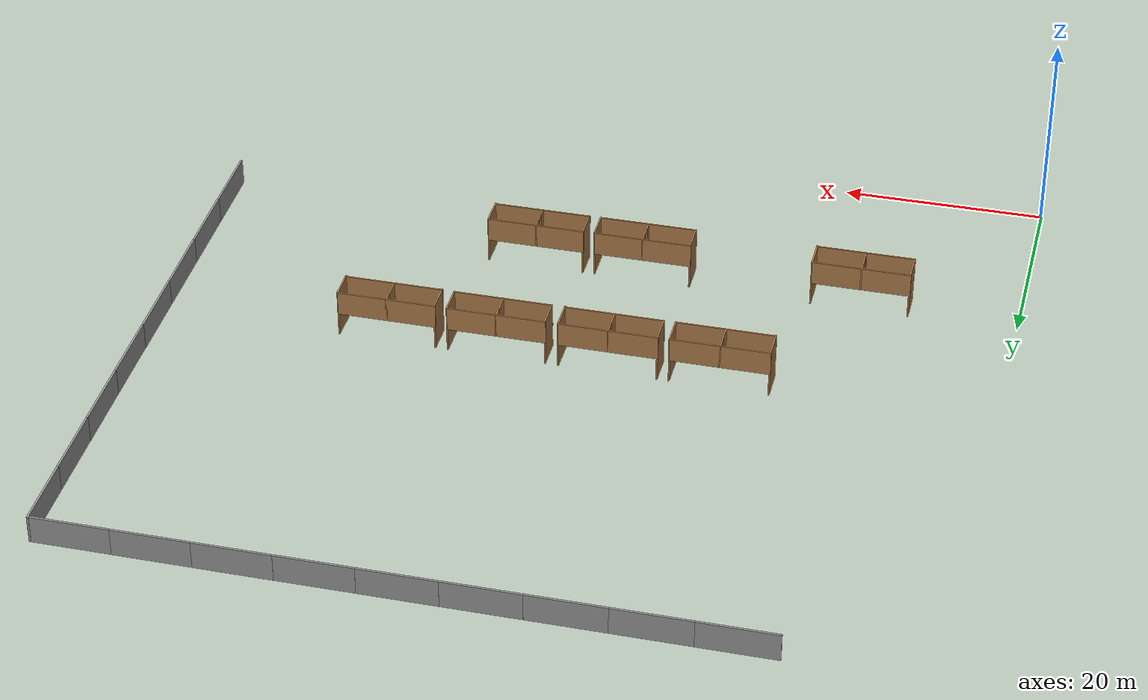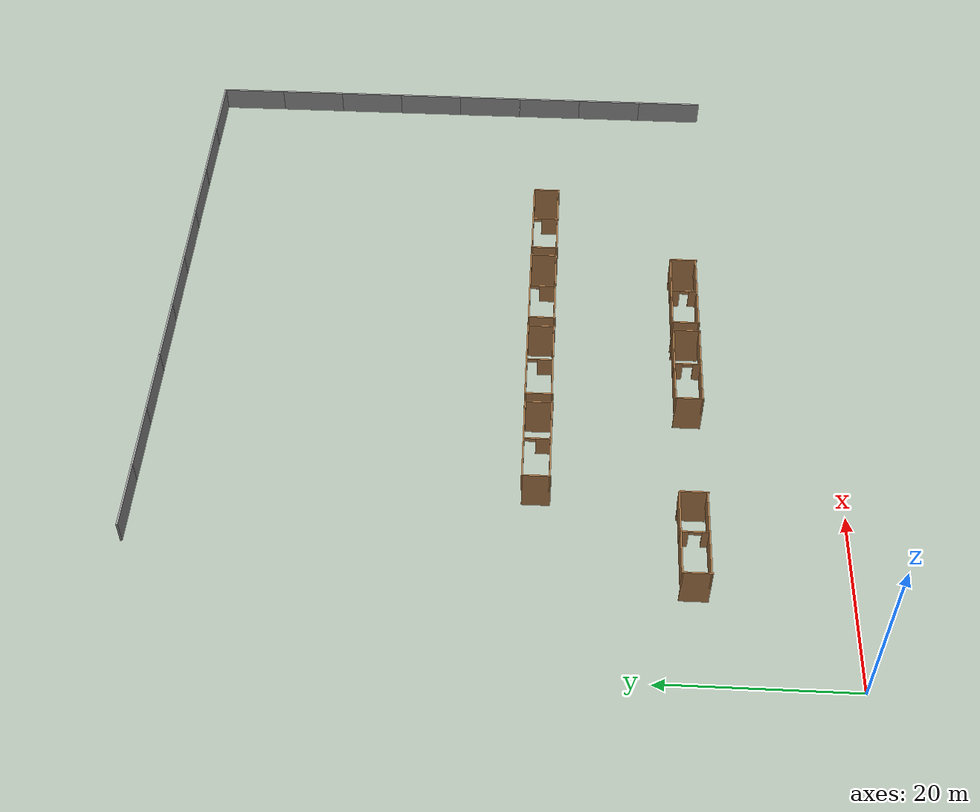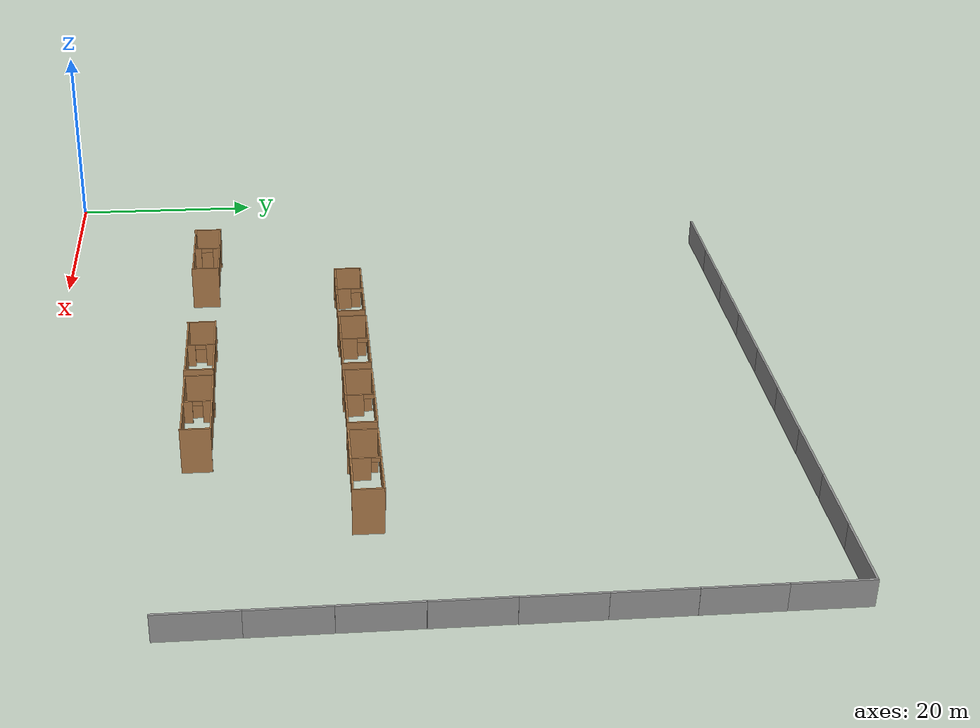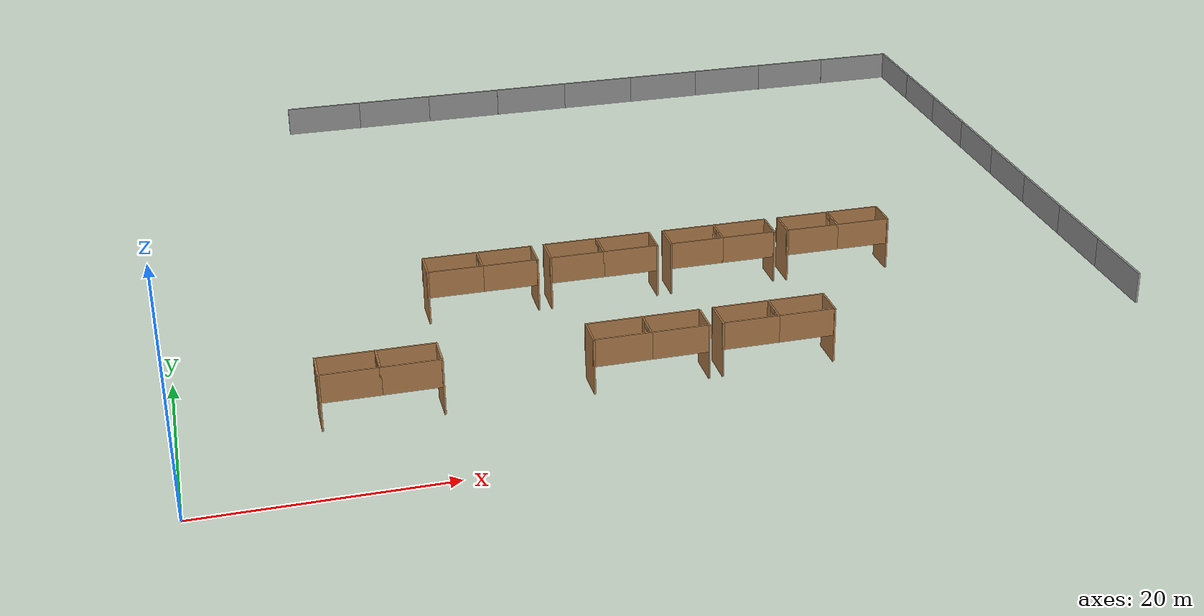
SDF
<sdf version="1.6">
 <world name="default">
  <model name="grey_wall_clone_10_clone_0_clone_clone">
   <static>1</static>
   <link name="link">
    <pose>0 0 1.4 0 -0 0</pose>
    <collision name="collision"><geometry><box><size>7.5 0.2 2.8</size></box></geometry></collision>
    <visual name="visual">
     <cast_shadows>0</cast_shadows>
     <geometry><box><size>7.5 0.2 2.8</size></box></geometry>
     <material>
      <script>
       <uri>model://forest/grey_wall/materials/scripts</uri>
       <uri>model://forest/grey_wall/materials/textures</uri>
       <name>vrc/grey_wall</name>
      </script>
     </material>
    </visual>
   </link>
   <pose>81.244 16.4592 0 0 0 -1.56932</pose>
  </model>
  <model name="grey_wall_clone_10_clone_0_clone_12">
   <static>1</static>
   <link name="link">
    <pose>0 0 1.4 0 -0 0</pose>
    <collision name="collision"><geometry><box><size>7.5 0.2 2.8</size></box></geometry></collision>
    <visual name="visual">
     <cast_shadows>0</cast_shadows>
     <geometry><box><size>7.5 0.2 2.8</size></box></geometry>
     <material>
      <script>
       <uri>model://forest/grey_wall/materials/scripts</uri>
       <uri>model://forest/grey_wall/materials/textures</uri>
       <name>vrc/grey_wall</name>
      </script>
     </material>
    </visual>
   </link>
   <pose>81.241 23.9604 0 0 0 -1.56932</pose>
  </model>
  <model name="grey_wall_clone_10_clone_0_clone_13">
   <static>1</static>
   <link name="link">
    <pose>0 0 1.4 0 -0 0</pose>
    <collision name="collision"><geometry><box><size>7.5 0.2 2.8</size></box></geometry></collision>
    <visual name="visual">
     <cast_shadows>0</cast_shadows>
     <geometry><box><size>7.5 0.2 2.8</size></box></geometry>
     <material>
      <script>
       <uri>model://forest/grey_wall/materials/scripts</uri>
       <uri>model://forest/grey_wall/materials/textures</uri>
       <name>vrc/grey_wall</name>
      </script>
     </material>
    </visual>
   </link>
   <pose>81.233 31.4667 0 0 0 -1.56932</pose>
  </model>
  <model name="grey_wall_clone_10_clone_0_clone_14">
   <static>1</static>
   <link name="link">
    <pose>0 0 1.4 0 -0 0</pose>
    <collision name="collision"><geometry><box><size>7.5 0.2 2.8</size></box></geometry></collision>
    <visual name="visual">
     <cast_shadows>0</cast_shadows>
     <geometry><box><size>7.5 0.2 2.8</size></box></geometry>
     <material>
      <script>
       <uri>model://forest/grey_wall/materials/scripts</uri>
       <uri>model://forest/grey_wall/materials/textures</uri>
       <name>vrc/grey_wall</name>
      </script>
     </material>
    </visual>
   </link>
   <pose>81.2299 38.978 0 0 0 -1.56932</pose>
  </model>
  <model name="grey_wall_clone_10_clone_0_clone_15">
   <static>1</static>
   <link name="link">
    <pose>0 0 1.4 0 -0 0</pose>
    <collision name="collision"><geometry><box><size>7.5 0.2 2.8</size></box></geometry></collision>
    <visual name="visual">
     <cast_shadows>0</cast_shadows>
     <geometry><box><size>7.5 0.2 2.8</size></box></geometry>
     <material>
      <script>
       <uri>model://forest/grey_wall/materials/scripts</uri>
       <uri>model://forest/grey_wall/materials/textures</uri>
       <name>vrc/grey_wall</name>
      </script>
     </material>
    </visual>
   </link>
   <pose>81.2399 46.4861 0 0 0 -1.56932</pose>
  </model>
  <model name="grey_wall_clone_10_clone_0_clone_16">
   <static>1</static>
   <link name="link">
    <pose>0 0 1.4 0 -0 0</pose>
    <collision name="collision"><geometry><box><size>7.5 0.2 2.8</size></box></geometry></collision>
    <visual name="visual">
     <cast_shadows>0</cast_shadows>
     <geometry><box><size>7.5 0.2 2.8</size></box></geometry>
     <material>
      <script>
       <uri>model://forest/grey_wall/materials/scripts</uri>
       <uri>model://forest/grey_wall/materials/textures</uri>
       <name>vrc/grey_wall</name>
      </script>
     </material>
    </visual>
   </link>
   <pose>81.2341 53.9889 0 0 0 -1.56932</pose>
  </model>
  <model name="grey_wall_clone_10_clone_0_clone_17">
   <static>1</static>
   <link name="link">
    <pose>0 0 1.4 0 -0 0</pose>
    <collision name="collision"><geometry><box><size>7.5 0.2 2.8</size></box></geometry></collision>
    <visual name="visual">
     <cast_shadows>0</cast_shadows>
     <geometry><box><size>7.5 0.2 2.8</size></box></geometry>
     <material>
      <script>
       <uri>model://forest/grey_wall/materials/scripts</uri>
       <uri>model://forest/grey_wall/materials/textures</uri>
       <name>vrc/grey_wall</name>
      </script>
     </material>
    </visual>
   </link>
   <pose>81.2319 61.4946 0 0 0 -1.56932</pose>
  </model>
  <model name="grey_wall_clone_10_clone_0_clone_18">
   <static>1</static>
   <link name="link">
    <pose>0 0 1.4 0 -0 0</pose>
    <collision name="collision"><geometry><box><size>7.5 0.2 2.8</size></box></geometry></collision>
    <visual name="visual">
     <cast_shadows>0</cast_shadows>
     <geometry><box><size>7.5 0.2 2.8</size></box></geometry>
     <material>
      <script>
       <uri>model://forest/grey_wall/materials/scripts</uri>
       <uri>model://forest/grey_wall/materials/textures</uri>
       <name>vrc/grey_wall</name>
      </script>
     </material>
    </visual>
   </link>
   <pose>81.2148 68.9647 0 0 0 -1.56932</pose>
  </model>
  <model name="grey_wall_clone_10_clone_clone_0">
   <static>1</static>
   <link name="link">
    <pose>0 0 1.4 0 -0 0</pose>
    <collision name="collision"><geometry><box><size>7.5 0.2 2.8</size></box></geometry></collision>
    <visual name="visual">
     <cast_shadows>0</cast_shadows>
     <geometry><box><size>7.5 0.2 2.8</size></box></geometry>
     <material>
      <script>
       <uri>model://forest/grey_wall/materials/scripts</uri>
       <uri>model://forest/grey_wall/materials/textures</uri>
       <name>vrc/grey_wall</name>
      </script>
     </material>
    </visual>
   </link>
   <pose>77.3508 72.6116 0 0 -0 0</pose>
  </model>
  <model name="grey_wall_clone_10_clone_clone_1">
   <static>1</static>
   <link name="link">
    <pose>0 0 1.4 0 -0 0</pose>
    <collision name="collision"><geometry><box><size>7.5 0.2 2.8</size></box></geometry></collision>
    <visual name="visual">
     <cast_shadows>0</cast_shadows>
     <geometry><box><size>7.5 0.2 2.8</size></box></geometry>
     <material>
      <script>
       <uri>model://forest/grey_wall/materials/scripts</uri>
       <uri>model://forest/grey_wall/materials/textures</uri>
       <name>vrc/grey_wall</name>
      </script>
     </material>
    </visual>
   </link>
   <pose>69.8438 72.6289 0 0 -0 0</pose>
  </model>
  <model name="grey_wall_clone_10_clone_clone_2">
   <static>1</static>
   <link name="link">
    <pose>0 0 1.4 0 -0 0</pose>
    <collision name="collision"><geometry><box><size>7.5 0.2 2.8</size></box></geometry></collision>
    <visual name="visual">
     <cast_shadows>0</cast_shadows>
     <geometry><box><size>7.5 0.2 2.8</size></box></geometry>
     <material>
      <script>
       <uri>model://forest/grey_wall/materials/scripts</uri>
       <uri>model://forest/grey_wall/materials/textures</uri>
       <name>vrc/grey_wall</name>
      </script>
     </material>
    </visual>
   </link>
   <pose>62.3519 72.6417 0 0 -0 0</pose>
  </model>
  <model name="grey_wall_clone_10_clone_clone_3">
   <static>1</static>
   <link name="link">
    <pose>0 0 1.4 0 -0 0</pose>
    <collision name="collision"><geometry><box><size>7.5 0.2 2.8</size></box></geometry></collision>
    <visual name="visual">
     <cast_shadows>0</cast_shadows>
     <geometry><box><size>7.5 0.2 2.8</size></box></geometry>
     <material>
      <script>
       <uri>model://forest/grey_wall/materials/scripts</uri>
       <uri>model://forest/grey_wall/materials/textures</uri>
       <name>vrc/grey_wall</name>
      </script>
     </material>
    </visual>
   </link>
   <pose>54.875 72.6299 0 0 -0 0</pose>
  </model>
  <model name="grey_wall_clone_10_clone_clone_4">
   <static>1</static>
   <link name="link">
    <pose>0 0 1.4 0 -0 0</pose>
    <collision name="collision"><geometry><box><size>7.5 0.2 2.8</size></box></geometry></collision>
    <visual name="visual">
     <cast_shadows>0</cast_shadows>
     <geometry><box><size>7.5 0.2 2.8</size></box></geometry>
     <material>
      <script>
       <uri>model://forest/grey_wall/materials/scripts</uri>
       <uri>model://forest/grey_wall/materials/textures</uri>
       <name>vrc/grey_wall</name>
      </script>
     </material>
    </visual>
   </link>
   <pose>47.3663 72.6324 0 0 -0 0</pose>
  </model>
  <model name="grey_wall_clone_10_clone_clone_5">
   <static>1</static>
   <link name="link">
    <pose>0 0 1.4 0 -0 0</pose>
    <collision name="collision"><geometry><box><size>7.5 0.2 2.8</size></box></geometry></collision>
    <visual name="visual">
     <cast_shadows>0</cast_shadows>
     <geometry><box><size>7.5 0.2 2.8</size></box></geometry>
     <material>
      <script>
       <uri>model://forest/grey_wall/materials/scripts</uri>
       <uri>model://forest/grey_wall/materials/textures</uri>
       <name>vrc/grey_wall</name>
      </script>
     </material>
    </visual>
   </link>
   <pose>39.8774 72.6251 0 0 -0 0</pose>
  </model>
  <model name="grey_wall_clone_10_clone_clone_6">
   <static>1</static>
   <link name="link">
    <pose>0 0 1.4 0 -0 0</pose>
    <collision name="collision"><geometry><box><size>7.5 0.2 2.8</size></box></geometry></collision>
    <visual name="visual">
     <cast_shadows>0</cast_shadows>
     <geometry><box><size>7.5 0.2 2.8</size></box></geometry>
     <material>
      <script>
       <uri>model://forest/grey_wall/materials/scripts</uri>
       <uri>model://forest/grey_wall/materials/textures</uri>
       <name>vrc/grey_wall</name>
      </script>
     </material>
    </visual>
   </link>
   <pose>32.3692 72.6193 0 0 -0 0</pose>
  </model>
  <model name="grey_wall_clone_10_clone_clone_7">
   <static>1</static>
   <link name="link">
    <pose>0 0 1.4 0 -0 0</pose>
    <collision name="collision"><geometry><box><size>7.5 0.2 2.8</size></box></geometry></collision>
    <visual name="visual">
     <cast_shadows>0</cast_shadows>
     <geometry><box><size>7.5 0.2 2.8</size></box></geometry>
     <material>
      <script>
       <uri>model://forest/grey_wall/materials/scripts</uri>
       <uri>model://forest/grey_wall/materials/textures</uri>
       <name>vrc/grey_wall</name>
      </script>
     </material>
    </visual>
   </link>
   <pose>24.8712 72.6187 0 0 -0 0</pose>
  </model>
  <model name="grey_wall_clone_10_clone_clone_8">
   <static>1</static>
   <link name="link">
    <pose>0 0 1.4 0 -0 0</pose>
    <collision name="collision"><geometry><box><size>7.5 0.2 2.8</size></box></geometry></collision>
    <visual name="visual">
     <cast_shadows>0</cast_shadows>
     <geometry><box><size>7.5 0.2 2.8</size></box></geometry>
     <material>
      <script>
       <uri>model://forest/grey_wall/materials/scripts</uri>
       <uri>model://forest/grey_wall/materials/textures</uri>
       <name>vrc/grey_wall</name>
      </script>
     </material>
    </visual>
   </link>
   <pose>17.3775 72.6269 0 0 -0 0</pose>
  </model>
  <model name="middle130">
   <pose>15.8741 15.9055 0 0 -0 0</pose>
   <link name="Wall_11">
    <collision name="Wall_11_Collision">
     <geometry><box><size>5 0.15 2.5</size></box></geometry>
     <pose>0 0 1.25 0 -0 0</pose>
    </collision>
    <visual name="Wall_11_Visual">
     <pose>0 0 1.25 0 -0 0</pose>
     <geometry><box><size>5 0.15 2.5</size></box></geometry>
     <material>
      <script><uri>file://media/materials/scripts/gazebo.material</uri><name>Gazebo/Wood</name></script>
      <ambient>1 1 1 1</ambient>
     </material>
     <meta><layer>0</layer></meta>
    </visual>
    <pose>-2.425 -1.83058 0 0 -0 3.14159</pose>
   </link>
   <link name="Wall_5">
    <collision name="Wall_5_Collision">
     <geometry><box><size>5 0.15 2.5</size></box></geometry>
     <pose>0 0 1.25 0 -0 0</pose>
    </collision>
    <visual name="Wall_5_Visual">
     <pose>0 0 1.25 0 -0 0</pose>
     <geometry><box><size>5 0.15 2.5</size></box></geometry>
     <material>
      <script><uri>file://media/materials/scripts/gazebo.material</uri><name>Gazebo/Wood</name></script>
      <ambient>1 1 1 1</ambient>
     </material>
     <meta><layer>0</layer></meta>
    </visual>
    <pose>-2.425 1.01942 0 0 -0 0</pose>
   </link>
   <link name="Wall_6">
    <pose>0 -0.405576 0 0 -0 -1.5708</pose>
    <visual name="Wall_6_Visual_0">
     <pose>-1.0775 0 1.25 0 -0 0</pose>
     <geometry><box><size>0.845 0.15 2.5</size></box></geometry>
     <material>
      <script><uri>file://media/materials/scripts/gazebo.material</uri><name>Gazebo/Wood</name></script>
      <ambient>1 1 1 1</ambient>
     </material>
     <meta><layer>0</layer></meta>
    </visual>
    <collision name="Wall_6_Collision_0">
     <geometry><box><size>0.845 0.15 2.5</size></box></geometry>
     <pose>-1.0775 0 1.25 0 -0 0</pose>
    </collision>
    <visual name="Wall_6_Visual_1">
     <pose>1.0725 0 1.25 0 -0 0</pose>
     <geometry><box><size>0.855 0.15 2.5</size></box></geometry>
     <material>
      <script><uri>file://media/materials/scripts/gazebo.material</uri><name>Gazebo/Wood</name></script>
      <ambient>1 1 1 1</ambient>
     </material>
     <meta><layer>0</layer></meta>
    </visual>
    <collision name="Wall_6_Collision_1">
     <geometry><box><size>0.855 0.15 2.5</size></box></geometry>
     <pose>1.0725 0 1.25 0 -0 0</pose>
    </collision>
    <visual name="Wall_6_Visual_2">
     <pose>-0.005 0 2.25 0 -0 0</pose>
     <geometry><box><size>1.3 0.15 0.5</size></box></geometry>
     <material>
      <script><uri>file://media/materials/scripts/gazebo.material</uri><name>Gazebo/Wood</name></script>
      <ambient>1 1 1 1</ambient>
     </material>
     <meta><layer>0</layer></meta>
    </visual>
    <collision name="Wall_6_Collision_2">
     <geometry><box><size>1.3 0.15 0.5</size></box></geometry>
     <pose>-0.005 0 2.25 0 -0 0</pose>
    </collision>
   </link>
   <link name="Wall_7">
    <collision name="Wall_7_Collision">
     <geometry><box><size>5 0.15 2.5</size></box></geometry>
     <pose>0 0 1.25 0 -0 0</pose>
    </collision>
    <visual name="Wall_7_Visual">
     <pose>0 0 1.25 0 -0 0</pose>
     <geometry><box><size>5 0.15 2.5</size></box></geometry>
     <material>
      <script><uri>file://media/materials/scripts/gazebo.material</uri><name>Gazebo/Wood</name></script>
      <ambient>1 1 1 1</ambient>
     </material>
     <meta><layer>0</layer></meta>
    </visual>
    <pose>2.425 -1.83058 0 0 -0 0</pose>
   </link>
   <link name="Wall_9">
    <collision name="Wall_9_Collision">
     <geometry><box><size>5 0.15 2.5</size></box></geometry>
     <pose>0 0 1.25 0 -0 0</pose>
    </collision>
    <visual name="Wall_9_Visual">
     <pose>0 0 1.25 0 -0 0</pose>
     <geometry><box><size>5 0.15 2.5</size></box></geometry>
     <material>
      <script><uri>file://media/materials/scripts/gazebo.material</uri><name>Gazebo/Wood</name></script>
      <ambient>1 1 1 1</ambient>
     </material>
     <meta><layer>0</layer></meta>
    </visual>
    <pose>2.425 1.01942 0 0 -0 0</pose>
   </link>
   <link name="Wall_10">
    <collision name="Wall_10_Collision">
     <geometry><box><size>0.15 3 5</size></box></geometry>
     <pose>-7.25 -1.5 0 0 -0 0</pose>
    </collision>
    <visual name="Wall_10_Visual">
     <pose>-7.25 -1.5 0 0 -0 0</pose>
     <geometry><box><size>0.15 3 5</size></box></geometry>
     <material>
      <script><uri>file://media/materials/scripts/gazebo.material</uri><name>Gazebo/Wood</name></script>
      <ambient>1 1 1 1</ambient>
     </material>
     <meta><layer>0</layer></meta>
    </visual>
    <pose>2.425 1.01942 0 0 -0 0</pose>
   </link>
   <link name="Wall_12">
    <collision name="Wall_12_Collision">
     <geometry><box><size>0.15 3 5</size></box></geometry>
     <pose>2.5 -1.5 0 0 -0 0</pose>
    </collision>
    <visual name="Wall_12_Visual">
     <pose>2.5 -1.5 0 0 -0 0</pose>
     <geometry><box><size>0.15 3 5</size></box></geometry>
     <material>
      <script><uri>file://media/materials/scripts/gazebo.material</uri><name>Gazebo/Wood</name></script>
      <ambient>1 1 1 1</ambient>
     </material>
     <meta><layer>0</layer></meta>
    </visual>
    <pose>2.425 1.01942 0 0 -0 0</pose>
   </link>
   <static>1</static>
  </model>
  <model name="middle110">
   <pose>37.9304 15.8961 0 0 -0 0</pose>
   <link name="Wall_11">
    <collision name="Wall_11_Collision">
     <geometry><box><size>5 0.15 2.5</size></box></geometry>
     <pose>0 0 1.25 0 -0 0</pose>
    </collision>
    <visual name="Wall_11_Visual">
     <pose>0 0 1.25 0 -0 0</pose>
     <geometry><box><size>5 0.15 2.5</size></box></geometry>
     <material>
      <script><uri>file://media/materials/scripts/gazebo.material</uri><name>Gazebo/Wood</name></script>
      <ambient>1 1 1 1</ambient>
     </material>
     <meta><layer>0</layer></meta>
    </visual>
    <pose>-2.425 -1.83058 0 0 -0 3.14159</pose>
   </link>
   <link name="Wall_5">
    <collision name="Wall_5_Collision">
     <geometry><box><size>5 0.15 2.5</size></box></geometry>
     <pose>0 0 1.25 0 -0 0</pose>
    </collision>
    <visual name="Wall_5_Visual">
     <pose>0 0 1.25 0 -0 0</pose>
     <geometry><box><size>5 0.15 2.5</size></box></geometry>
     <material>
      <script><uri>file://media/materials/scripts/gazebo.material</uri><name>Gazebo/Wood</name></script>
      <ambient>1 1 1 1</ambient>
     </material>
     <meta><layer>0</layer></meta>
    </visual>
    <pose>-2.425 1.01942 0 0 -0 0</pose>
   </link>
   <link name="Wall_6">
    <pose>0 -0.405576 0 0 -0 -1.5708</pose>
    <visual name="Wall_6_Visual_0">
     <pose>-1.0275 0 1.25 0 -0 0</pose>
     <geometry><box><size>0.945 0.15 2.5</size></box></geometry>
     <material>
      <script><uri>file://media/materials/scripts/gazebo.material</uri><name>Gazebo/Wood</name></script>
      <ambient>1 1 1 1</ambient>
     </material>
     <meta><layer>0</layer></meta>
    </visual>
    <collision name="Wall_6_Collision_0">
     <geometry><box><size>0.945 0.15 2.5</size></box></geometry>
     <pose>-1.0275 0 1.25 0 -0 0</pose>
    </collision>
    <visual name="Wall_6_Visual_1">
     <pose>1.0225 0 1.25 0 -0 0</pose>
     <geometry><box><size>0.955 0.15 2.5</size></box></geometry>
     <material>
      <script><uri>file://media/materials/scripts/gazebo.material</uri><name>Gazebo/Wood</name></script>
      <ambient>1 1 1 1</ambient>
     </material>
     <meta><layer>0</layer></meta>
    </visual>
    <collision name="Wall_6_Collision_1">
     <geometry><box><size>0.955 0.15 2.5</size></box></geometry>
     <pose>1.0225 0 1.25 0 -0 0</pose>
    </collision>
    <visual name="Wall_6_Visual_2">
     <pose>-0.005 0 2.25 0 -0 0</pose>
     <geometry><box><size>1.1 0.15 0.5</size></box></geometry>
     <material>
      <script><uri>file://media/materials/scripts/gazebo.material</uri><name>Gazebo/Wood</name></script>
      <ambient>1 1 1 1</ambient>
     </material>
     <meta><layer>0</layer></meta>
    </visual>
    <collision name="Wall_6_Collision_2">
     <geometry><box><size>1.1 0.15 0.5</size></box></geometry>
     <pose>-0.005 0 2.25 0 -0 0</pose>
    </collision>
   </link>
   <link name="Wall_7">
    <collision name="Wall_7_Collision">
     <geometry><box><size>5 0.15 2.5</size></box></geometry>
     <pose>0 0 1.25 0 -0 0</pose>
    </collision>
    <visual name="Wall_7_Visual">
     <pose>0 0 1.25 0 -0 0</pose>
     <geometry><box><size>5 0.15 2.5</size></box></geometry>
     <material>
      <script><uri>file://media/materials/scripts/gazebo.material</uri><name>Gazebo/Wood</name></script>
      <ambient>1 1 1 1</ambient>
     </material>
     <meta><layer>0</layer></meta>
    </visual>
    <pose>2.425 -1.83058 0 0 -0 0</pose>
   </link>
   <link name="Wall_9">
    <collision name="Wall_9_Collision">
     <geometry><box><size>5 0.15 2.5</size></box></geometry>
     <pose>0 0 1.25 0 -0 0</pose>
    </collision>
    <visual name="Wall_9_Visual">
     <pose>0 0 1.25 0 -0 0</pose>
     <geometry><box><size>5 0.15 2.5</size></box></geometry>
     <material>
      <script><uri>file://media/materials/scripts/gazebo.material</uri><name>Gazebo/Wood</name></script>
      <ambient>1 1 1 1</ambient>
     </material>
     <meta><layer>0</layer></meta>
    </visual>
    <pose>2.425 1.01942 0 0 -0 0</pose>
   </link>
   <link name="Wall_10">
    <collision name="Wall_10_Collision">
     <geometry><box><size>0.15 3 5</size></box></geometry>
     <pose>-7.25 -1.5 0 0 -0 0</pose>
    </collision>
    <visual name="Wall_10_Visual">
     <pose>-7.25 -1.5 0 0 -0 0</pose>
     <geometry><box><size>0.15 3 5</size></box></geometry>
     <material>
      <script><uri>file://media/materials/scripts/gazebo.material</uri><name>Gazebo/Wood</name></script>
      <ambient>1 1 1 1</ambient>
     </material>
     <meta><layer>0</layer></meta>
    </visual>
    <pose>2.425 1.01942 0 0 -0 0</pose>
   </link>
   <link name="Wall_12">
    <collision name="Wall_12_Collision">
     <geometry><box><size>0.15 3 5</size></box></geometry>
     <pose>2.5 -1.5 0 0 -0 0</pose>
    </collision>
    <visual name="Wall_12_Visual">
     <pose>2.5 -1.5 0 0 -0 0</pose>
     <geometry><box><size>0.15 3 5</size></box></geometry>
     <material>
      <script><uri>file://media/materials/scripts/gazebo.material</uri><name>Gazebo/Wood</name></script>
      <ambient>1 1 1 1</ambient>
     </material>
     <meta><layer>0</layer></meta>
    </visual>
    <pose>2.425 1.01942 0 0 -0 0</pose>
   </link>
   <static>1</static>
  </model>
  <model name="middle100">
   <pose>48.8745 15.927 0 0 -0 0</pose>
   <link name="Wall_11">
    <collision name="Wall_11_Collision">
     <geometry><box><size>5 0.15 2.5</size></box></geometry>
     <pose>0 0 1.25 0 -0 0</pose>
    </collision>
    <visual name="Wall_11_Visual">
     <pose>0 0 1.25 0 -0 0</pose>
     <geometry><box><size>5 0.15 2.5</size></box></geometry>
     <material>
      <script><uri>file://media/materials/scripts/gazebo.material</uri><name>Gazebo/Wood</name></script>
      <ambient>1 1 1 1</ambient>
     </material>
     <meta><layer>0</layer></meta>
    </visual>
    <pose>-2.425 -1.83058 0 0 -0 3.14159</pose>
   </link>
   <link name="Wall_5">
    <collision name="Wall_5_Collision">
     <geometry><box><size>5 0.15 2.5</size></box></geometry>
     <pose>0 0 1.25 0 -0 0</pose>
    </collision>
    <visual name="Wall_5_Visual">
     <pose>0 0 1.25 0 -0 0</pose>
     <geometry><box><size>5 0.15 2.5</size></box></geometry>
     <material>
      <script><uri>file://media/materials/scripts/gazebo.material</uri><name>Gazebo/Wood</name></script>
      <ambient>1 1 1 1</ambient>
     </material>
     <meta><layer>0</layer></meta>
    </visual>
    <pose>-2.425 1.01942 0 0 -0 0</pose>
   </link>
   <link name="Wall_6">
    <pose>0 -0.405576 0 0 -0 -1.5708</pose>
    <visual name="Wall_6_Visual_0">
     <pose>-1.0025 0 1.25 0 -0 0</pose>
     <geometry><box><size>0.995 0.15 2.5</size></box></geometry>
     <material>
      <script><uri>file://media/materials/scripts/gazebo.material</uri><name>Gazebo/Wood</name></script>
      <ambient>1 1 1 1</ambient>
     </material>
     <meta><layer>0</layer></meta>
    </visual>
    <collision name="Wall_6_Collision_0">
     <geometry><box><size>0.995 0.15 2.5</size></box></geometry>
     <pose>-1.0025 0 1.25 0 -0 0</pose>
    </collision>
    <visual name="Wall_6_Visual_1">
     <pose>0.9975 0 1.25 0 -0 0</pose>
     <geometry><box><size>1.005 0.15 2.5</size></box></geometry>
     <material>
      <script><uri>file://media/materials/scripts/gazebo.material</uri><name>Gazebo/Wood</name></script>
      <ambient>1 1 1 1</ambient>
     </material>
     <meta><layer>0</layer></meta>
    </visual>
    <collision name="Wall_6_Collision_1">
     <geometry><box><size>1.005 0.15 2.5</size></box></geometry>
     <pose>0.9975 0 1.25 0 -0 0</pose>
    </collision>
    <visual name="Wall_6_Visual_2">
     <pose>-0.005 0 2.25 0 -0 0</pose>
     <geometry><box><size>1 0.15 0.5</size></box></geometry>
     <material>
      <script><uri>file://media/materials/scripts/gazebo.material</uri><name>Gazebo/Wood</name></script>
      <ambient>1 1 1 1</ambient>
     </material>
     <meta><layer>0</layer></meta>
    </visual>
    <collision name="Wall_6_Collision_2">
     <geometry><box><size>1 0.15 0.5</size></box></geometry>
     <pose>-0.005 0 2.25 0 -0 0</pose>
    </collision>
   </link>
   <link name="Wall_7">
    <collision name="Wall_7_Collision">
     <geometry><box><size>5 0.15 2.5</size></box></geometry>
     <pose>0 0 1.25 0 -0 0</pose>
    </collision>
    <visual name="Wall_7_Visual">
     <pose>0 0 1.25 0 -0 0</pose>
     <geometry><box><size>5 0.15 2.5</size></box></geometry>
     <material>
      <script><uri>file://media/materials/scripts/gazebo.material</uri><name>Gazebo/Wood</name></script>
      <ambient>1 1 1 1</ambient>
     </material>
     <meta><layer>0</layer></meta>
    </visual>
    <pose>2.425 -1.83058 0 0 -0 0</pose>
   </link>
   <link name="Wall_9">
    <collision name="Wall_9_Collision">
     <geometry><box><size>5 0.15 2.5</size></box></geometry>
     <pose>0 0 1.25 0 -0 0</pose>
    </collision>
    <visual name="Wall_9_Visual">
     <pose>0 0 1.25 0 -0 0</pose>
     <geometry><box><size>5 0.15 2.5</size></box></geometry>
     <material>
      <script><uri>file://media/materials/scripts/gazebo.material</uri><name>Gazebo/Wood</name></script>
      <ambient>1 1 1 1</ambient>
     </material>
     <meta><layer>0</layer></meta>
    </visual>
    <pose>2.425 1.01942 0 0 -0 0</pose>
   </link>
   <link name="Wall_10">
    <collision name="Wall_10_Collision">
     <geometry><box><size>0.15 3 5</size></box></geometry>
     <pose>-7.25 -1.5 0 0 -0 0</pose>
    </collision>
    <visual name="Wall_10_Visual">
     <pose>-7.25 -1.5 0 0 -0 0</pose>
     <geometry><box><size>0.15 3 5</size></box></geometry>
     <material>
      <script><uri>file://media/materials/scripts/gazebo.material</uri><name>Gazebo/Wood</name></script>
      <ambient>1 1 1 1</ambient>
     </material>
     <meta><layer>0</layer></meta>
    </visual>
    <pose>2.425 1.01942 0 0 -0 0</pose>
   </link>
   <link name="Wall_12">
    <collision name="Wall_12_Collision">
     <geometry><box><size>0.15 3 5</size></box></geometry>
     <pose>2.5 -1.5 0 0 -0 0</pose>
    </collision>
    <visual name="Wall_12_Visual">
     <pose>2.5 -1.5 0 0 -0 0</pose>
     <geometry><box><size>0.15 3 5</size></box></geometry>
     <material>
      <script><uri>file://media/materials/scripts/gazebo.material</uri><name>Gazebo/Wood</name></script>
      <ambient>1 1 1 1</ambient>
     </material>
     <meta><layer>0</layer></meta>
    </visual>
    <pose>2.425 1.01942 0 0 -0 0</pose>
   </link>
   <static>1</static>
  </model>
  <model name="left120">
   <pose>26.8574 31.8435 0 0 -0 0</pose>
   <link name="Wall_11">
    <collision name="Wall_11_Collision">
     <geometry><box><size>5 0.15 2.5</size></box></geometry>
     <pose>0 0 1.25 0 -0 0</pose>
    </collision>
    <visual name="Wall_11_Visual">
     <pose>0 0 1.25 0 -0 0</pose>
     <geometry><box><size>5 0.15 2.5</size></box></geometry>
     <material>
      <script><uri>file://media/materials/scripts/gazebo.material</uri><name>Gazebo/Wood</name></script>
      <ambient>1 1 1 1</ambient>
     </material>
     <meta><layer>0</layer></meta>
    </visual>
    <pose>-2.425 -1.83058 0 0 -0 3.14159</pose>
   </link>
   <link name="Wall_5">
    <collision name="Wall_5_Collision">
     <geometry><box><size>5 0.15 2.5</size></box></geometry>
     <pose>0 0 1.25 0 -0 0</pose>
    </collision>
    <visual name="Wall_5_Visual">
     <pose>0 0 1.25 0 -0 0</pose>
     <geometry><box><size>5 0.15 2.5</size></box></geometry>
     <material>
      <script><uri>file://media/materials/scripts/gazebo.material</uri><name>Gazebo/Wood</name></script>
      <ambient>1 1 1 1</ambient>
     </material>
     <meta><layer>0</layer></meta>
    </visual>
    <pose>-2.425 1.01942 0 0 -0 0</pose>
   </link>
   <link name="Wall_6">
    <pose>0 -0.405576 0 0 -0 -1.5708</pose>
    <visual name="Wall_6_Visual_0">
     <pose>-1.4275 0 1.25 0 -0 0</pose>
     <geometry><box><size>0.145 0.15 2.5</size></box></geometry>
     <material>
      <script><uri>file://media/materials/scripts/gazebo.material</uri><name>Gazebo/Wood</name></script>
      <ambient>1 1 1 1</ambient>
     </material>
     <meta><layer>0</layer></meta>
    </visual>
    <collision name="Wall_6_Collision_0">
     <geometry><box><size>0.145 0.15 2.5</size></box></geometry>
     <pose>-1.4275 0 1.25 0 -0 0</pose>
    </collision>
    <visual name="Wall_6_Visual_1">
     <pose>0.6725 0 1.25 0 -0 0</pose>
     <geometry><box><size>1.655 0.15 2.5</size></box></geometry>
     <material>
      <script><uri>file://media/materials/scripts/gazebo.material</uri><name>Gazebo/Wood</name></script>
      <ambient>1 1 1 1</ambient>
     </material>
     <meta><layer>0</layer></meta>
    </visual>
    <collision name="Wall_6_Collision_1">
     <geometry><box><size>1.655 0.15 2.5</size></box></geometry>
     <pose>0.6725 0 1.25 0 -0 0</pose>
    </collision>
    <visual name="Wall_6_Visual_2">
     <pose>-0.755 0 2.25 0 -0 0</pose>
     <geometry><box><size>1.2 0.15 0.5</size></box></geometry>
     <material>
      <script><uri>file://media/materials/scripts/gazebo.material</uri><name>Gazebo/Wood</name></script>
      <ambient>1 1 1 1</ambient>
     </material>
     <meta><layer>0</layer></meta>
    </visual>
    <collision name="Wall_6_Collision_2">
     <geometry><box><size>1.2 0.15 0.5</size></box></geometry>
     <pose>-0.755 0 2.25 0 -0 0</pose>
    </collision>
   </link>
   <link name="Wall_7">
    <collision name="Wall_7_Collision">
     <geometry><box><size>5 0.15 2.5</size></box></geometry>
     <pose>0 0 1.25 0 -0 0</pose>
    </collision>
    <visual name="Wall_7_Visual">
     <pose>0 0 1.25 0 -0 0</pose>
     <geometry><box><size>5 0.15 2.5</size></box></geometry>
     <material>
      <script><uri>file://media/materials/scripts/gazebo.material</uri><name>Gazebo/Wood</name></script>
      <ambient>1 1 1 1</ambient>
     </material>
     <meta><layer>0</layer></meta>
    </visual>
    <pose>2.425 -1.83058 0 0 -0 0</pose>
   </link>
   <link name="Wall_9">
    <collision name="Wall_9_Collision">
     <geometry><box><size>5 0.15 2.5</size></box></geometry>
     <pose>0 0 1.25 0 -0 0</pose>
    </collision>
    <visual name="Wall_9_Visual">
     <pose>0 0 1.25 0 -0 0</pose>
     <geometry><box><size>5 0.15 2.5</size></box></geometry>
     <material>
      <script><uri>file://media/materials/scripts/gazebo.material</uri><name>Gazebo/Wood</name></script>
      <ambient>1 1 1 1</ambient>
     </material>
     <meta><layer>0</layer></meta>
    </visual>
    <pose>2.425 1.01942 0 0 -0 0</pose>
   </link>
   <link name="Wall_10">
    <collision name="Wall_10_Collision">
     <geometry><box><size>0.15 3 5</size></box></geometry>
     <pose>-7.25 -1.5 0 0 -0 0</pose>
    </collision>
    <visual name="Wall_10_Visual">
     <pose>-7.25 -1.5 0 0 -0 0</pose>
     <geometry><box><size>0.15 3 5</size></box></geometry>
     <material>
      <script><uri>file://media/materials/scripts/gazebo.material</uri><name>Gazebo/Wood</name></script>
      <ambient>1 1 1 1</ambient>
     </material>
     <meta><layer>0</layer></meta>
    </visual>
    <pose>2.425 1.01942 0 0 -0 0</pose>
   </link>
   <link name="Wall_12">
    <collision name="Wall_12_Collision">
     <geometry><box><size>0.15 3 5</size></box></geometry>
     <pose>2.5 -1.5 0 0 -0 0</pose>
    </collision>
    <visual name="Wall_12_Visual">
     <pose>2.5 -1.5 0 0 -0 0</pose>
     <geometry><box><size>0.15 3 5</size></box></geometry>
     <material>
      <script><uri>file://media/materials/scripts/gazebo.material</uri><name>Gazebo/Wood</name></script>
      <ambient>1 1 1 1</ambient>
     </material>
     <meta><layer>0</layer></meta>
    </visual>
    <pose>2.425 1.01942 0 0 -0 0</pose>
   </link>
   <static>1</static>
  </model>
  <model name="left110">
   <pose>37.7944 31.8829 0 0 -0 0</pose>
   <link name="Wall_11">
    <collision name="Wall_11_Collision">
     <geometry><box><size>5 0.15 2.5</size></box></geometry>
     <pose>0 0 1.25 0 -0 0</pose>
    </collision>
    <visual name="Wall_11_Visual">
     <pose>0 0 1.25 0 -0 0</pose>
     <geometry><box><size>5 0.15 2.5</size></box></geometry>
     <material>
      <script><uri>file://media/materials/scripts/gazebo.material</uri><name>Gazebo/Wood</name></script>
      <ambient>1 1 1 1</ambient>
     </material>
     <meta><layer>0</layer></meta>
    </visual>
    <pose>-2.425 -1.83058 0 0 -0 3.14159</pose>
   </link>
   <link name="Wall_5">
    <collision name="Wall_5_Collision">
     <geometry><box><size>5 0.15 2.5</size></box></geometry>
     <pose>0 0 1.25 0 -0 0</pose>
    </collision>
    <visual name="Wall_5_Visual">
     <pose>0 0 1.25 0 -0 0</pose>
     <geometry><box><size>5 0.15 2.5</size></box></geometry>
     <material>
      <script><uri>file://media/materials/scripts/gazebo.material</uri><name>Gazebo/Wood</name></script>
      <ambient>1 1 1 1</ambient>
     </material>
     <meta><layer>0</layer></meta>
    </visual>
    <pose>-2.425 1.01942 0 0 -0 0</pose>
   </link>
   <link name="Wall_6">
    <pose>0 -0.405576 0 0 -0 -1.5708</pose>
    <visual name="Wall_6_Visual_0">
     <pose>-1.4275 0 1.25 0 -0 0</pose>
     <geometry><box><size>0.145 0.15 2.5</size></box></geometry>
     <material>
      <script><uri>file://media/materials/scripts/gazebo.material</uri><name>Gazebo/Wood</name></script>
      <ambient>1 1 1 1</ambient>
     </material>
     <meta><layer>0</layer></meta>
    </visual>
    <collision name="Wall_6_Collision_0">
     <geometry><box><size>0.145 0.15 2.5</size></box></geometry>
     <pose>-1.4275 0 1.25 0 -0 0</pose>
    </collision>
    <visual name="Wall_6_Visual_1">
     <pose>0.6225 0 1.25 0 -0 0</pose>
     <geometry><box><size>1.755 0.15 2.5</size></box></geometry>
     <material>
      <script><uri>file://media/materials/scripts/gazebo.material</uri><name>Gazebo/Wood</name></script>
      <ambient>1 1 1 1</ambient>
     </material>
     <meta><layer>0</layer></meta>
    </visual>
    <collision name="Wall_6_Collision_1">
     <geometry><box><size>1.755 0.15 2.5</size></box></geometry>
     <pose>0.6225 0 1.25 0 -0 0</pose>
    </collision>
    <visual name="Wall_6_Visual_2">
     <pose>-0.805 0 2.25 0 -0 0</pose>
     <geometry><box><size>1.1 0.15 0.5</size></box></geometry>
     <material>
      <script><uri>file://media/materials/scripts/gazebo.material</uri><name>Gazebo/Wood</name></script>
      <ambient>1 1 1 1</ambient>
     </material>
     <meta><layer>0</layer></meta>
    </visual>
    <collision name="Wall_6_Collision_2">
     <geometry><box><size>1.1 0.15 0.5</size></box></geometry>
     <pose>-0.805 0 2.25 0 -0 0</pose>
    </collision>
   </link>
   <link name="Wall_7">
    <collision name="Wall_7_Collision">
     <geometry><box><size>5 0.15 2.5</size></box></geometry>
     <pose>0 0 1.25 0 -0 0</pose>
    </collision>
    <visual name="Wall_7_Visual">
     <pose>0 0 1.25 0 -0 0</pose>
     <geometry><box><size>5 0.15 2.5</size></box></geometry>
     <material>
      <script><uri>file://media/materials/scripts/gazebo.material</uri><name>Gazebo/Wood</name></script>
      <ambient>1 1 1 1</ambient>
     </material>
     <meta><layer>0</layer></meta>
    </visual>
    <pose>2.425 -1.83058 0 0 -0 0</pose>
   </link>
   <link name="Wall_9">
    <collision name="Wall_9_Collision">
     <geometry><box><size>5 0.15 2.5</size></box></geometry>
     <pose>0 0 1.25 0 -0 0</pose>
    </collision>
    <visual name="Wall_9_Visual">
     <pose>0 0 1.25 0 -0 0</pose>
     <geometry><box><size>5 0.15 2.5</size></box></geometry>
     <material>
      <script><uri>file://media/materials/scripts/gazebo.material</uri><name>Gazebo/Wood</name></script>
      <ambient>1 1 1 1</ambient>
     </material>
     <meta><layer>0</layer></meta>
    </visual>
    <pose>2.425 1.01942 0 0 -0 0</pose>
   </link>
   <link name="Wall_10">
    <collision name="Wall_10_Collision">
     <geometry><box><size>0.15 3 5</size></box></geometry>
     <pose>-7.25 -1.5 0 0 -0 0</pose>
    </collision>
    <visual name="Wall_10_Visual">
     <pose>-7.25 -1.5 0 0 -0 0</pose>
     <geometry><box><size>0.15 3 5</size></box></geometry>
     <material>
      <script><uri>file://media/materials/scripts/gazebo.material</uri><name>Gazebo/Wood</name></script>
      <ambient>1 1 1 1</ambient>
     </material>
     <meta><layer>0</layer></meta>
    </visual>
    <pose>2.425 1.01942 0 0 -0 0</pose>
   </link>
   <link name="Wall_12">
    <collision name="Wall_12_Collision">
     <geometry><box><size>0.15 3 5</size></box></geometry>
     <pose>2.5 -1.5 0 0 -0 0</pose>
    </collision>
    <visual name="Wall_12_Visual">
     <pose>2.5 -1.5 0 0 -0 0</pose>
     <geometry><box><size>0.15 3 5</size></box></geometry>
     <material>
      <script><uri>file://media/materials/scripts/gazebo.material</uri><name>Gazebo/Wood</name></script>
      <ambient>1 1 1 1</ambient>
     </material>
     <meta><layer>0</layer></meta>
    </visual>
    <pose>2.425 1.01942 0 0 -0 0</pose>
   </link>
   <static>1</static>
  </model>
  <model name="left100">
   <pose>48.8593 31.8705 0 0 -0 0</pose>
   <link name="Wall_11">
    <collision name="Wall_11_Collision">
     <geometry><box><size>5 0.15 2.5</size></box></geometry>
     <pose>0 0 1.25 0 -0 0</pose>
    </collision>
    <visual name="Wall_11_Visual">
     <pose>0 0 1.25 0 -0 0</pose>
     <geometry><box><size>5 0.15 2.5</size></box></geometry>
     <material>
      <script><uri>file://media/materials/scripts/gazebo.material</uri><name>Gazebo/Wood</name></script>
      <ambient>1 1 1 1</ambient>
     </material>
     <meta><layer>0</layer></meta>
    </visual>
    <pose>-2.425 -1.83058 0 0 -0 3.14159</pose>
   </link>
   <link name="Wall_5">
    <collision name="Wall_5_Collision">
     <geometry><box><size>5 0.15 2.5</size></box></geometry>
     <pose>0 0 1.25 0 -0 0</pose>
    </collision>
    <visual name="Wall_5_Visual">
     <pose>0 0 1.25 0 -0 0</pose>
     <geometry><box><size>5 0.15 2.5</size></box></geometry>
     <material>
      <script><uri>file://media/materials/scripts/gazebo.material</uri><name>Gazebo/Wood</name></script>
      <ambient>1 1 1 1</ambient>
     </material>
     <meta><layer>0</layer></meta>
    </visual>
    <pose>-2.425 1.01942 0 0 -0 0</pose>
   </link>
   <link name="Wall_6">
    <pose>0 -0.405576 0 0 -0 -1.5708</pose>
    <visual name="Wall_6_Visual_0">
     <pose>-1.4225 0 1.25 0 -0 0</pose>
     <geometry><box><size>0.155 0.15 2.5</size></box></geometry>
     <material>
      <script><uri>file://media/materials/scripts/gazebo.material</uri><name>Gazebo/Wood</name></script>
      <ambient>1 1 1 1</ambient>
     </material>
     <meta><layer>0</layer></meta>
    </visual>
    <collision name="Wall_6_Collision_0">
     <geometry><box><size>0.155 0.15 2.5</size></box></geometry>
     <pose>-1.4225 0 1.25 0 -0 0</pose>
    </collision>
    <visual name="Wall_6_Visual_1">
     <pose>0.5775 0 1.25 0 -0 0</pose>
     <geometry><box><size>1.845 0.15 2.5</size></box></geometry>
     <material>
      <script><uri>file://media/materials/scripts/gazebo.material</uri><name>Gazebo/Wood</name></script>
      <ambient>1 1 1 1</ambient>
     </material>
     <meta><layer>0</layer></meta>
    </visual>
    <collision name="Wall_6_Collision_1">
     <geometry><box><size>1.845 0.15 2.5</size></box></geometry>
     <pose>0.5775 0 1.25 0 -0 0</pose>
    </collision>
    <visual name="Wall_6_Visual_2">
     <pose>-0.845 0 2.25 0 -0 0</pose>
     <geometry><box><size>1 0.15 0.5</size></box></geometry>
     <material>
      <script><uri>file://media/materials/scripts/gazebo.material</uri><name>Gazebo/Wood</name></script>
      <ambient>1 1 1 1</ambient>
     </material>
     <meta><layer>0</layer></meta>
    </visual>
    <collision name="Wall_6_Collision_2">
     <geometry><box><size>1 0.15 0.5</size></box></geometry>
     <pose>-0.845 0 2.25 0 -0 0</pose>
    </collision>
   </link>
   <link name="Wall_7">
    <collision name="Wall_7_Collision">
     <geometry><box><size>5 0.15 2.5</size></box></geometry>
     <pose>0 0 1.25 0 -0 0</pose>
    </collision>
    <visual name="Wall_7_Visual">
     <pose>0 0 1.25 0 -0 0</pose>
     <geometry><box><size>5 0.15 2.5</size></box></geometry>
     <material>
      <script><uri>file://media/materials/scripts/gazebo.material</uri><name>Gazebo/Wood</name></script>
      <ambient>1 1 1 1</ambient>
     </material>
     <meta><layer>0</layer></meta>
    </visual>
    <pose>2.425 -1.83058 0 0 -0 0</pose>
   </link>
   <link name="Wall_9">
    <collision name="Wall_9_Collision">
     <geometry><box><size>5 0.15 2.5</size></box></geometry>
     <pose>0 0 1.25 0 -0 0</pose>
    </collision>
    <visual name="Wall_9_Visual">
     <pose>0 0 1.25 0 -0 0</pose>
     <geometry><box><size>5 0.15 2.5</size></box></geometry>
     <material>
      <script><uri>file://media/materials/scripts/gazebo.material</uri><name>Gazebo/Wood</name></script>
      <ambient>1 1 1 1</ambient>
     </material>
     <meta><layer>0</layer></meta>
    </visual>
    <pose>2.425 1.01942 0 0 -0 0</pose>
   </link>
   <link name="Wall_10">
    <collision name="Wall_10_Collision">
     <geometry><box><size>0.15 3 5</size></box></geometry>
     <pose>-7.25 -1.5 0 0 -0 0</pose>
    </collision>
    <visual name="Wall_10_Visual">
     <pose>-7.25 -1.5 0 0 -0 0</pose>
     <geometry><box><size>0.15 3 5</size></box></geometry>
     <material>
      <script><uri>file://media/materials/scripts/gazebo.material</uri><name>Gazebo/Wood</name></script>
      <ambient>1 1 1 1</ambient>
     </material>
     <meta><layer>0</layer></meta>
    </visual>
    <pose>2.425 1.01942 0 0 -0 0</pose>
   </link>
   <link name="Wall_12">
    <collision name="Wall_12_Collision">
     <geometry><box><size>0.15 3 5</size></box></geometry>
     <pose>2.5 -1.5 0 0 -0 0</pose>
    </collision>
    <visual name="Wall_12_Visual">
     <pose>2.5 -1.5 0 0 -0 0</pose>
     <geometry><box><size>0.15 3 5</size></box></geometry>
     <material>
      <script><uri>file://media/materials/scripts/gazebo.material</uri><name>Gazebo/Wood</name></script>
      <ambient>1 1 1 1</ambient>
     </material>
     <meta><layer>0</layer></meta>
    </visual>
    <pose>2.425 1.01942 0 0 -0 0</pose>
   </link>
   <static>1</static>
  </model>
  <model name="left090">
   <pose>59.8745 31.8338 0 0 -0 0</pose>
   <link name="Wall_11">
    <collision name="Wall_11_Collision">
     <geometry><box><size>5 0.15 2.5</size></box></geometry>
     <pose>0 0 1.25 0 -0 0</pose>
    </collision>
    <visual name="Wall_11_Visual">
     <pose>0 0 1.25 0 -0 0</pose>
     <geometry><box><size>5 0.15 2.5</size></box></geometry>
     <material>
      <script><uri>file://media/materials/scripts/gazebo.material</uri><name>Gazebo/Wood</name></script>
      <ambient>1 1 1 1</ambient>
     </material>
     <meta><layer>0</layer></meta>
    </visual>
    <pose>-2.425 -1.83058 0 0 -0 3.14159</pose>
   </link>
   <link name="Wall_5">
    <collision name="Wall_5_Collision">
     <geometry><box><size>5 0.15 2.5</size></box></geometry>
     <pose>0 0 1.25 0 -0 0</pose>
    </collision>
    <visual name="Wall_5_Visual">
     <pose>0 0 1.25 0 -0 0</pose>
     <geometry><box><size>5 0.15 2.5</size></box></geometry>
     <material>
      <script><uri>file://media/materials/scripts/gazebo.material</uri><name>Gazebo/Wood</name></script>
      <ambient>1 1 1 1</ambient>
     </material>
     <meta><layer>0</layer></meta>
    </visual>
    <pose>-2.425 1.01942 0 0 -0 0</pose>
   </link>
   <link name="Wall_6">
    <pose>0 -0.405576 0 0 -0 -1.5708</pose>
    <visual name="Wall_6_Visual_0">
     <pose>-1.4225 0 1.25 0 -0 0</pose>
     <geometry><box><size>0.155 0.15 2.5</size></box></geometry>
     <material>
      <script><uri>file://media/materials/scripts/gazebo.material</uri><name>Gazebo/Wood</name></script>
      <ambient>1 1 1 1</ambient>
     </material>
     <meta><layer>0</layer></meta>
    </visual>
    <collision name="Wall_6_Collision_0">
     <geometry><box><size>0.155 0.15 2.5</size></box></geometry>
     <pose>-1.4225 0 1.25 0 -0 0</pose>
    </collision>
    <visual name="Wall_6_Visual_1">
     <pose>0.5275 0 1.25 0 -0 0</pose>
     <geometry><box><size>1.945 0.15 2.5</size></box></geometry>
     <material>
      <script><uri>file://media/materials/scripts/gazebo.material</uri><name>Gazebo/Wood</name></script>
      <ambient>1 1 1 1</ambient>
     </material>
     <meta><layer>0</layer></meta>
    </visual>
    <collision name="Wall_6_Collision_1">
     <geometry><box><size>1.945 0.15 2.5</size></box></geometry>
     <pose>0.5275 0 1.25 0 -0 0</pose>
    </collision>
    <visual name="Wall_6_Visual_2">
     <pose>-0.895 0 2.25 0 -0 0</pose>
     <geometry><box><size>0.9 0.15 0.5</size></box></geometry>
     <material>
      <script><uri>file://media/materials/scripts/gazebo.material</uri><name>Gazebo/Wood</name></script>
      <ambient>1 1 1 1</ambient>
     </material>
     <meta><layer>0</layer></meta>
    </visual>
    <collision name="Wall_6_Collision_2">
     <geometry><box><size>0.9 0.15 0.5</size></box></geometry>
     <pose>-0.895 0 2.25 0 -0 0</pose>
    </collision>
   </link>
   <link name="Wall_7">
    <collision name="Wall_7_Collision">
     <geometry><box><size>5 0.15 2.5</size></box></geometry>
     <pose>0 0 1.25 0 -0 0</pose>
    </collision>
    <visual name="Wall_7_Visual">
     <pose>0 0 1.25 0 -0 0</pose>
     <geometry><box><size>5 0.15 2.5</size></box></geometry>
     <material>
      <script><uri>file://media/materials/scripts/gazebo.material</uri><name>Gazebo/Wood</name></script>
      <ambient>1 1 1 1</ambient>
     </material>
     <meta><layer>0</layer></meta>
    </visual>
    <pose>2.425 -1.83058 0 0 -0 0</pose>
   </link>
   <link name="Wall_9">
    <collision name="Wall_9_Collision">
     <geometry><box><size>5 0.15 2.5</size></box></geometry>
     <pose>0 0 1.25 0 -0 0</pose>
    </collision>
    <visual name="Wall_9_Visual">
     <pose>0 0 1.25 0 -0 0</pose>
     <geometry><box><size>5 0.15 2.5</size></box></geometry>
     <material>
      <script><uri>file://media/materials/scripts/gazebo.material</uri><name>Gazebo/Wood</name></script>
      <ambient>1 1 1 1</ambient>
     </material>
     <meta><layer>0</layer></meta>
    </visual>
    <pose>2.425 1.01942 0 0 -0 0</pose>
   </link>
   <link name="Wall_10">
    <collision name="Wall_10_Collision">
     <geometry><box><size>0.15 3 5</size></box></geometry>
     <pose>-7.25 -1.5 0 0 -0 0</pose>
    </collision>
    <visual name="Wall_10_Visual">
     <pose>-7.25 -1.5 0 0 -0 0</pose>
     <geometry><box><size>0.15 3 5</size></box></geometry>
     <material>
      <script><uri>file://media/materials/scripts/gazebo.material</uri><name>Gazebo/Wood</name></script>
      <ambient>1 1 1 1</ambient>
     </material>
     <meta><layer>0</layer></meta>
    </visual>
    <pose>2.425 1.01942 0 0 -0 0</pose>
   </link>
   <link name="Wall_12">
    <collision name="Wall_12_Collision">
     <geometry><box><size>0.15 3 5</size></box></geometry>
     <pose>2.5 -1.5 0 0 -0 0</pose>
    </collision>
    <visual name="Wall_12_Visual">
     <pose>2.5 -1.5 0 0 -0 0</pose>
     <geometry><box><size>0.15 3 5</size></box></geometry>
     <material>
      <script><uri>file://media/materials/scripts/gazebo.material</uri><name>Gazebo/Wood</name></script>
      <ambient>1 1 1 1</ambient>
     </material>
     <meta><layer>0</layer></meta>
    </visual>
    <pose>2.425 1.01942 0 0 -0 0</pose>
   </link>
   <static>1</static>
  </model>
 </world>
</sdf>
